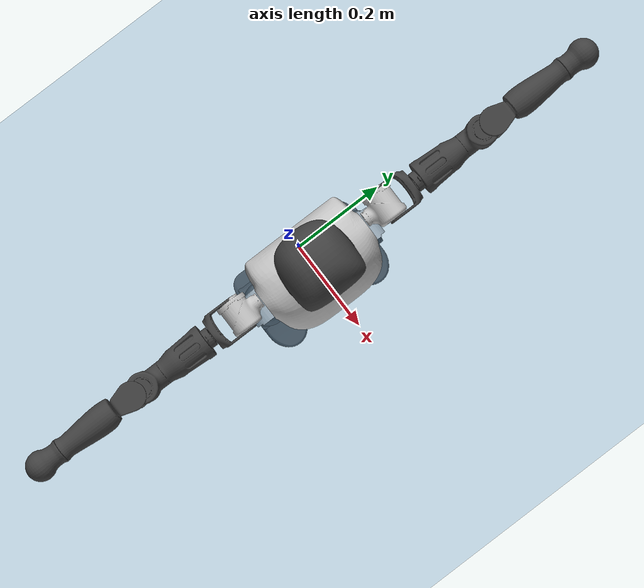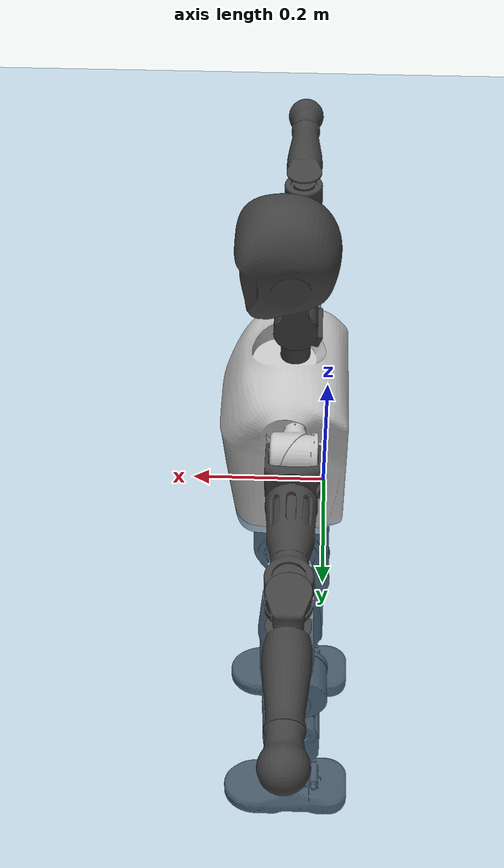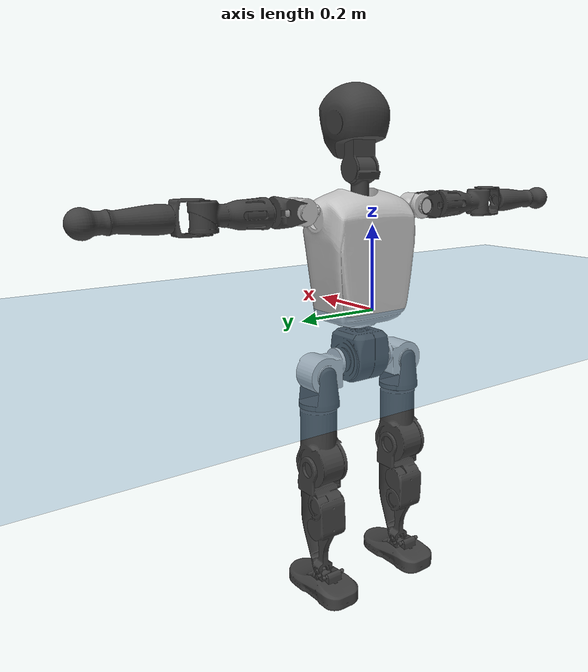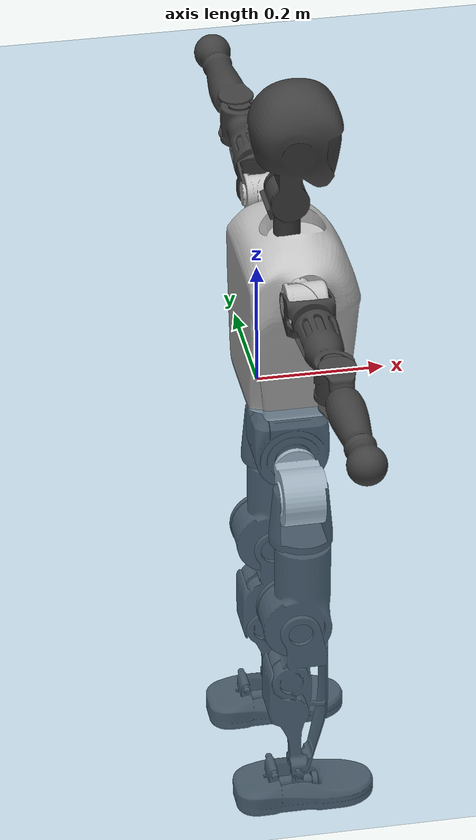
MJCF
<mujoco model="T1">
  <compiler angle="radian" assetdir="assets" balanceinertia="true" inertiafromgeom="false"/>

  <option timestep="0.005" density="1.2" viscosity="2e-05"/>

  <size nkey="1"/>

  <visual>
    <quality shadowsize="8192"/>
    <map shadowclip="0.5"/>
  </visual>

  <default>
    <default class="/">
      <joint armature="0.01" damping="0.01" frictionloss="0.1"/>
      <geom contype="0" conaffinity="0" group="1" solref="-1000 -80"/>
      <site size="0.01 0.005 0.005" group="5"/>
      <general forcelimited="true" biastype="affine" gainprm="25" biasprm="0 -25 -0.6"/>
      <default class="t1">
        <geom rgba="0.25 0.25 0.25 1"/>
        <default class="visual">
          <geom type="mesh" group="2"/>
        </default>
        <default class="collision">
          <geom group="3"/>
        </default>
        <default class="foot">
          <geom size="0.1115 0.05 0.015" type="box" condim="6" group="4" priority="1" solimp="0.015 1 0.015"/>
        </default>
        <default class="reward_collision_sphere">
          <geom group="5" rgba="1 0 0 1"/>
        </default>
      </default>
    </default>
  </default>

  <asset>
    <texture type="skybox" colorspace="auto" name="//unnamed_texture_0" builtin="gradient" rgb1="0.95 0.95 0.95" rgb2="0.95 0.95 0.95" width="100" height="600"/>
    <texture type="2d" colorspace="auto" name="texplane" builtin="checker" rgb1="0.345 0.575 0.748" rgb2="0.345 0.575 0.748" markrgb="1 1 1" width="512" height="512"/>
    <material name="MatPlane" class="/" texture="texplane" texuniform="true" texrepeat="2 2" specular="0.9"/>
    <mesh name="Trunk" class="/" file="Trunk.stl"/>
    <mesh name="H1" class="/" file="H1.stl"/>
    <mesh name="H2" class="/" file="H2.stl"/>
    <mesh name="AL1" class="/" file="AL1.stl"/>
    <mesh name="AL2" class="/" file="AL2.stl"/>
    <mesh name="AL3" class="/" file="AL3.stl"/>
    <mesh name="left_hand_link" class="/" file="left_hand_link.stl"/>
    <mesh name="AR1" class="/" file="AR1.stl"/>
    <mesh name="AR2" class="/" file="AR2.stl"/>
    <mesh name="AR3" class="/" file="AR3.stl"/>
    <mesh name="right_hand_link" class="/" file="right_hand_link.stl"/>
    <mesh name="Waist" class="/" file="Waist.stl"/>
    <mesh name="Hip_Pitch_Left" class="/" file="Hip_Pitch_Left.stl"/>
    <mesh name="Hip_Roll_Left" class="/" file="Hip_Roll_Left.stl"/>
    <mesh name="Hip_Yaw_Left" class="/" file="Hip_Yaw_Left.stl"/>
    <mesh name="Shank_Left" class="/" file="Shank_Left.stl"/>
    <mesh name="Ankle_Cross_Left" class="/" file="Ankle_Cross_Left.stl"/>
    <mesh name="left_foot_link" class="/" file="left_foot_link.stl"/>
    <mesh name="Hip_Pitch_Right" class="/" file="Hip_Pitch_Right.stl"/>
    <mesh name="Hip_Roll_Right" class="/" file="Hip_Roll_Right.stl"/>
    <mesh name="Hip_Yaw_Right" class="/" file="Hip_Yaw_Right.stl"/>
    <mesh name="Shank_Right" class="/" file="Shank_Right.stl"/>
    <mesh name="Ankle_Cross_Right" class="/" file="Ankle_Cross_Right.stl"/>
    <mesh name="right_foot_link" class="/" file="right_foot_link.stl"/>
  </asset>

  <worldbody>
    <geom name="floor" class="/" size="100 100 0.125" type="plane" group="0" material="MatPlane"/>
    <light name="toplight_shadow" class="/" pos="0 0 5" dir="0.0990148 0.0990148 -0.990148" type="directional" ambient="0.04 0.04 0.04" diffuse="0.55 0.55 0.55" specular="0.12 0.12 0.12"/>
    <light name="toplight_fill" class="/" pos="0 0 5" dir="0.0990148 0.0990148 -0.990148" type="directional" castshadow="false" ambient="0.04 0.04 0.04" diffuse="0.3 0.3 0.3" specular="0.08 0.08 0.08"/>
    <body name="trunk" childclass="t1" pos="-1.6628e-05 0.000539401 0.000340257" quat="1 3.16695e-05 -3.58993e-05 5.58691e-05">
      <inertial pos="0.0402267 0.000701744 0.112335" quat="0.999939 0.00239803 -0.0104618 -0.00254294" mass="11.6831" diaginertia="0.0224024 0.172475 0.0764269"/>
      <joint name="//unnamed_joint_0" type="free" armature="0" damping="0" frictionloss="0"/>
      <geom name="//unnamed_geom_1" class="visual" rgba="0.76 0.76 0.76 1" mesh="Trunk"/>
      <geom name="//unnamed_geom_2" class="collision" size="0.0747035 0.0996047 0.149407" pos="0.0451552 0 0.127597" type="box"/>
      <geom name="//unnamed_geom_3" class="reward_collision_sphere" size="0.114545" pos="0.0451552 0 0.106331"/>
      <geom name="//unnamed_geom_4" class="reward_collision_sphere" size="0.0149407" pos="0.0451552 0.0996407 0"/>
      <geom name="//unnamed_geom_5" class="reward_collision_sphere" size="0.0149407" pos="0.0451552 -0.0996407 0"/>
      <geom name="//unnamed_geom_6" class="reward_collision_sphere" size="0.0149407" pos="0.0451552 0.12543 0.191396"/>
      <geom name="//unnamed_geom_7" class="reward_collision_sphere" size="0.0149407" pos="0.0451552 -0.12543 0.191396"/>
      <site name="imu" pos="0.00464805 0.00452396 0.000712551" size="0.00996047"/>
      <camera name="track" pos="0 -2.34449 0" quat="0.707107 0.707107 0 0" mode="trackcom"/>
      <camera name="ego_camera" pos="0.0918155 0 0.446591" quat="-0.5 -0.5 0.5 0.5"/>
      <body name="H1" pos="0.047268 -0.000572421 0.258162" quat="1 1.91177e-05 -4.23572e-06 -2.42798e-07">
        <inertial pos="-0.00125298 -0.000504862 0.0605382" quat="0.764664 -0.0122579 0.000879516 0.644312" mass="0.442195" diaginertia="5.80719e-05 0.000497389 0.00020542"/>
        <joint name="AAHead_yaw" pos="0 0 0" axis="0.00210917 0.00301019 0.999993" stiffness="0.0022269" range="-1.57104 1.55792" armature="0.0100922" damping="0.00818784" frictionloss="0.0919897"/>
        <geom name="//unnamed_geom_8" class="visual" mesh="H1"/>
        <body name="H2" pos="-3.75079e-05 0.000402636 0.0654519" quat="1 1.79764e-05 0.000123631 3.23624e-05">
          <inertial pos="0.00585022 0.000359568 0.105143" quat="0.987918 0.107338 -0.0772275 -0.0808224" mass="0.620535" diaginertia="0.000491437 0.00424924 0.00232152"/>
          <joint name="Head_pitch" pos="0 0 0" axis="0.00164663 -0.999999 -0.000134904" range="-1.21518 0.351105" armature="0.00994056" damping="0.00700421" frictionloss="0.10346"/>
          <geom name="//unnamed_geom_9" class="visual" mesh="H2"/>
          <geom name="//unnamed_geom_10" class="collision" size="0.0796838" pos="0.00752586 0 0.116964"/>
          <geom name="//unnamed_geom_11" class="reward_collision_sphere" size="0.0896442" pos="0.0150517 0 0.106331"/>
        </body>
      </body>
      <body name="AL1" pos="0.0448707 0.1251 0.233834" quat="1 -0.000101539 0.000151355 0.000296278">
        <inertial pos="-0.000626031 0.0534615 0.000880588" quat="0.506737 0.493091 -0.505548 0.49447" mass="0.52573" diaginertia="0.000328038 0.00288709 0.000397168"/>
        <joint name="Left_Shoulder_Pitch" pos="0 0 0" axis="0.00195848 0.999998 7.06938e-05" range="-3.30166 1.22307" armature="0.00997397" damping="0.0135488" frictionloss="0.099275"/>
        <geom name="//unnamed_geom_12" class="visual" rgba="0.76 0.76 0.76 1" mesh="AL1"/>
        <body name="AL2" pos="0.000628361 0.0561997 0.000848193" quat="1 0.000373917 -0.000249193 0.000160143">
          <inertial pos="0.0035649 0.0455298 -0.00111122" quat="0.484859 0.515627 -0.483994 0.514577" mass="0.15613" diaginertia="9.64524e-05 0.000763559 0.000241508"/>
          <joint name="Left_Shoulder_Roll" pos="0 0 0" axis="-0.999999 -0.00131982 0.000652394" range="-1.57178 1.73852" armature="0.00996006" damping="0.00273449" frictionloss="0.0974323"/>
          <geom name="//unnamed_geom_13" class="visual" mesh="AL2"/>
          <body name="AL3" pos="0.000750039 0.0728983 -0.000414974" quat="1 2.00196e-05 -5.16474e-06 3.70103e-07">
            <inertial pos="-0.00111579 0.0997749 0.00073438" quat="0.70864 0.705567 -0.00160222 -0.00112338" mass="1.00271" diaginertia="0.0031057 0.0285023 0.000843768"/>
            <joint name="Left_Elbow_Pitch" pos="0 0 0" axis="0.00407829 -0.999991 0.000624907" range="-2.26375 2.28307" armature="0.00974368" damping="0.0082772" frictionloss="0.10007"/>
            <geom name="//unnamed_geom_14" class="visual" mesh="AL3"/>
            <geom name="//unnamed_geom_15" class="collision" size="0.0298814 0.0747035" pos="0 0.0586122 0" quat="0.707105 0.707108 0 0" type="cylinder"/>
            <geom name="//unnamed_geom_16" class="reward_collision_sphere" size="0.0358577"/>
            <body name="left_hand_link" pos="-0.000422688 0.173657 -6.98934e-05" quat="1 0.000143243 -0.000139411 -0.00020369">
              <inertial pos="-0.000286088 0.12812 0.000416828" quat="0.707896 0.706317 -5.68223e-05 -0.000452267" mass="0.325499" diaginertia="0.00197081 0.0180579 0.000290651"/>
              <joint name="Left_Elbow_Yaw" pos="0 0 0" axis="0.00147267 -0.00342095 0.999993" range="-2.45936 0.00809687" armature="0.0100561" damping="0.00340021" frictionloss="0.098602"/>
              <geom name="//unnamed_geom_17" class="visual" mesh="left_hand_link"/>
              <geom name="//unnamed_geom_18" class="collision" size="0.0298814 0.0871541" pos="0 0.152392 0" quat="0.707105 0.707108 0 0" type="cylinder"/>
              <geom name="//unnamed_geom_19" class="reward_collision_sphere" size="0.0498024"/>
              <geom name="//unnamed_geom_20" class="reward_collision_sphere" size="0.0348616" pos="0 0.128947 0"/>
              <geom name="//unnamed_geom_21" class="reward_collision_sphere" size="0.0348616" pos="0 0.252032 0"/>
            </body>
          </body>
        </body>
      </body>
      <body name="AR1" pos="0.0435585 -0.123871 0.233336" quat="1 0.000203711 0.000632112 -0.000167373">
        <inertial pos="-0.000152042 -0.0529838 -0.000877701" quat="0.50368 0.499075 -0.503104 0.494082" mass="0.520332" diaginertia="0.000327469 0.00280562 0.00039132"/>
        <joint name="Right_Shoulder_Pitch" pos="0 0 0" axis="0.00253591 -0.999991 0.00351058" range="-1.22418 3.3088" armature="0.0101551" damping="0.00377003" frictionloss="0.0943537"/>
        <geom name="//unnamed_geom_22" class="visual" rgba="0.76 0.76 0.76 1" mesh="AR1"/>
        <body name="AR2" pos="-0.00125237 -0.0547625 -0.000409818" quat="1 9.17581e-05 -2.52106e-05 -0.000110912">
          <inertial pos="0.0038094 -0.0458221 0.000757145" quat="0.513187 0.484732 -0.513523 0.48782" mass="0.157209" diaginertia="9.51578e-05 0.000764322 0.00023624"/>
          <joint name="Right_Shoulder_Roll" pos="0 0 0" axis="-0.999981 -0.000268818 0.00618316" range="-1.74343 1.56965" armature="0.0100129" damping="0.00128162" frictionloss="0.100257"/>
          <geom name="//unnamed_geom_23" class="visual" mesh="AR2"/>
          <body name="AR3" pos="0.000388054 -0.0716497 0.000485153" quat="1 0.000338393 -0.000347489 0.000228476">
            <inertial pos="-0.000494243 -0.100158 -0.000369093" quat="0.70992 0.704277 -0.00209032 -0.00143712" mass="0.997888" diaginertia="0.00307419 0.0275895 0.000838649"/>
            <joint name="Right_Elbow_Pitch" pos="0 0 0" axis="-0.00138936 0.999999 2.06512e-05" range="-2.28045 2.26478" armature="0.0099803" damping="0.00806789" frictionloss="0.101983"/>
            <geom name="//unnamed_geom_24" class="visual" mesh="AR3"/>
            <geom name="//unnamed_geom_25" class="collision" size="0.0298814 0.0747035" pos="0 -0.0586122 0" quat="0.707105 0.707108 0 0" type="cylinder"/>
            <geom name="//unnamed_geom_26" class="reward_collision_sphere" size="0.0358577"/>
            <body name="right_hand_link" pos="-0.000308387 -0.171806 0.000823103" quat="1 0.000183653 0.00019419 0.000150743">
              <inertial pos="5.45516e-05 -0.128904 0.000206729" quat="0.707729 0.706484 0.000271438 -0.000206997" mass="0.319681" diaginertia="0.00195706 0.0178713 0.000292005"/>
              <joint name="Right_Elbow_Yaw" pos="0 0 0" axis="2.24302e-05 0.00107243 0.999999" range="-0.0160872 2.43848" armature="0.00991921" damping="0.0064165" frictionloss="0.103982"/>
              <geom name="//unnamed_geom_27" class="visual" mesh="right_hand_link"/>
              <geom name="//unnamed_geom_28" class="collision" size="0.0298814 0.0871541" pos="0 -0.152392 0" quat="0.707105 0.707108 0 0" type="cylinder"/>
              <geom name="//unnamed_geom_29" class="reward_collision_sphere" size="0.0498024"/>
              <geom name="//unnamed_geom_30" class="reward_collision_sphere" size="0.0348616" pos="0 -0.128947 0"/>
              <geom name="//unnamed_geom_31" class="reward_collision_sphere" size="0.0348616" pos="0 -0.252032 0"/>
            </body>
          </body>
        </body>
      </body>
      <body name="Waist" pos="0.0479483 -0.000744515 -0.124131" quat="1 -0.000168646 2.79557e-05 -7.3415e-06">
        <inertial pos="-8.43194e-05 -0.000102854 0.00832938" quat="0.983755 0.00151288 -0.179487 0.00300203" mass="2.59294" diaginertia="0.00128959 0.0119103 0.00648226"/>
        <joint name="Waist" pos="0 0 0" axis="0.0042136 -0.000319881 0.999991" range="-1.55251 1.57504" armature="0.00966537" damping="0.0110653" frictionloss="0.100194"/>
        <geom name="//unnamed_geom_32" class="visual" mesh="Waist"/>
        <body name="Hip_Pitch_Left" pos="0.000449366 0.123383 -0.00141396" quat="1 -0.000113199 -8.81094e-05 -7.99398e-05">
          <inertial pos="0.000567803 -0.00894316 -0.0200776" quat="0.974264 0.225056 0.0123957 0.00239563" mass="1.02298" diaginertia="0.000436325 0.00321018 0.00170987"/>
          <joint name="Left_Hip_Pitch" pos="0 0 0" axis="0.000786615 0.999999 0.00151412" range="-1.80244 1.58671" armature="0.0104931" damping="0.00720727" frictionloss="0.0972287"/>
          <geom name="//unnamed_geom_33" class="visual" rgba="0.76 0.76 0.76 1" mesh="Hip_Pitch_Left"/>
          <body name="Hip_Roll_Left" pos="0.000714364 0.00082643 -0.0218949" quat="1 0.000145066 -3.95032e-05 7.82281e-05">
            <inertial pos="0.00213808 0.000112889 -0.0581163" quat="0.707974 -0.000682578 -0.00548402 0.706217" mass="0.373335" diaginertia="0.000418491 0.00329897 0.000694511"/>
            <joint name="Left_Hip_Roll" pos="0 0 0" axis="-1 0.000246801 0.000932071" range="-1.57021 0.210486" armature="0.0103358" damping="0.0136813" frictionloss="0.104262"/>
            <geom name="//unnamed_geom_34" class="visual" mesh="Hip_Roll_Left"/>
            <geom name="//unnamed_geom_35" class="reward_collision_sphere" size="0.0547826"/>
            <body name="Hip_Yaw_Left" pos="0.00104999 0.000262663 -0.0867389" quat="1 -0.000129941 0.000153899 -0.00014724">
              <inertial pos="-0.00528741 -0.00036993 -0.0954455" quat="0.696614 -0.0354715 -0.0324231 0.715835" mass="2.14692" diaginertia="0.00622901 0.0554823 0.00353522"/>
              <joint name="Left_Hip_Yaw" pos="0 0 0" axis="-0.000716783 0.000489071 -1" range="-0.986119 1.01765" armature="0.010033" damping="0.0131092" frictionloss="0.0990184"/>
              <geom name="//unnamed_geom_36" class="visual" mesh="Hip_Yaw_Left"/>
              <geom name="//unnamed_geom_37" class="collision" size="0.0498024 0.0796838" type="cylinder"/>
              <body name="Shank_Left" pos="-0.00889106 -4.96118e-05 -0.144526" quat="1 -1.15358e-07 -1.42932e-05 -3.17704e-05">
                <inertial pos="-0.00496747 0.000673365 -0.131917" quat="0.997587 0.00138994 -0.0238502 0.0651912" mass="1.68442" diaginertia="0.00839495 0.0763652 0.00254238"/>
                <joint name="Left_Knee_Pitch" pos="0 0 0" axis="-0.00203183 0.999994 0.00294658" range="-0.0203453 2.35862" armature="0.0100515" damping="0.00920911" frictionloss="0.0980559"/>
                <geom name="//unnamed_geom_38" class="visual" mesh="Shank_Left"/>
                <geom name="//unnamed_geom_39" class="collision" size="0.0498024 0.0747035" pos="0 0 -0.127597" type="cylinder"/>
                <geom name="//unnamed_geom_40" class="reward_collision_sphere" size="0.0647431"/>
                <body name="Ankle_Cross_Left" pos="-0.000938347 -0.00034877 -0.298614" quat="1 6.54711e-05 0.000131798 -0.000218256">
                  <inertial pos="-0.00185691 -0.000403865 -0.00945477" quat="0.443575 0.54961 0.551689 0.443631" mass="0.0717351" diaginertia="6.98975e-06 5.71765e-05 1.53609e-05"/>
                  <joint name="Left_Ankle_Pitch" pos="0 0 0" axis="-0.000381001 1 -0.000285031" range="-0.85562 0.358703" armature="0.0103902" damping="0.0126506" frictionloss="0.098897"/>
                  <geom name="//unnamed_geom_41" class="visual" mesh="Ankle_Cross_Left"/>
                  <body name="left_foot_link" pos="-0.000818245 0.000507147 -0.0131095" quat="1 0.000307302 0.000184698 0.000292419">
                    <inertial pos="0.000212415 0.000168345 -0.00965933" quat="-0.000257537 0.621041 0.000758062 0.783778" mass="0.672902" diaginertia="0.000644366 0.00519879 0.00301564"/>
                    <joint name="Left_Ankle_Roll" pos="0 0 0" axis="-0.999993 -0.000341432 -0.00372264" stiffness="0.000282855" range="-0.446375 0.439242" armature="0.00995779" damping="0.013202" frictionloss="0.0995584"/>
                    <geom name="//unnamed_geom_42" class="visual" mesh="left_foot_link"/>
                    <geom name="left_foot" class="foot" size="0.105501 0.0506367 0.0156182" pos="0.00752586 0 -0.0159497"/>
                    <geom name="//unnamed_geom_44" class="reward_collision_sphere" size="0.0517944" pos="0.00752586 0 -0.0159497"/>
                    <geom name="//unnamed_geom_45" class="reward_collision_sphere" size="0.0298814" pos="0.0714957 -0.0269616 -0.0159497"/>
                    <geom name="//unnamed_geom_46" class="reward_collision_sphere" size="0.0298814" pos="-0.052681 -0.0269616 -0.0159497"/>
                    <site name="left_foot" class="foot" pos="0.00752586 0 -0.0159497" size="0.00996047"/>
                  </body>
                </body>
              </body>
            </body>
          </body>
        </body>
        <body name="Hip_Pitch_Right" pos="-0.00135277 -0.124373 -0.000616654" quat="1 -6.61263e-06 -1.22354e-05 2.14568e-05">
          <inertial pos="0.000565978 0.00910748 -0.018677" quat="0.973423 -0.22849 0.0149402 -0.00404075" mass="1.0016" diaginertia="0.000432361 0.00321093 0.00165353"/>
          <joint name="Right_Hip_Pitch" pos="0 0 0" axis="0.000970889 -0.999997 0.00227874" stiffness="0.000279912" range="-1.5707 1.77316" armature="0.0103137" damping="0.00831299" frictionloss="0.099004"/>
          <geom name="//unnamed_geom_47" class="visual" rgba="0.76 0.76 0.76 1" mesh="Hip_Pitch_Right"/>
          <body name="Hip_Roll_Right" pos="0.000824748 -0.000382039 -0.0206689" quat="1 -0.000161669 -0.000372393 7.36001e-05">
            <inertial pos="0.000992825 -0.000583033 -0.0578401" quat="0.71023 -0.00291371 -0.00489928 0.703947" mass="0.382441" diaginertia="0.000419784 0.0033642 0.000699522"/>
            <joint name="Right_Hip_Roll" pos="0 0 0" axis="-0.999997 0.00150168 -0.00168265" range="-0.172501 1.56684" armature="0.00995026" damping="0.00672183" frictionloss="0.0948749"/>
            <geom name="//unnamed_geom_48" class="visual" mesh="Hip_Roll_Right"/>
            <geom name="//unnamed_geom_49" class="reward_collision_sphere" size="0.0547826"/>
            <body name="Hip_Yaw_Right" pos="0.000142426 -0.000163619 -0.087016" quat="1 -0.000156242 6.604e-05 4.88422e-05">
              <inertial pos="-0.00503617 0.000458821 -0.0958519" quat="0.715052 -0.0330903 -0.0333122 0.697492" mass="2.15795" diaginertia="0.00620051 0.0554716 0.00356801"/>
              <joint name="Right_Hip_Yaw" pos="0 0 0" axis="-0.00257111 -0.0114448 -0.999931" stiffness="0.000543483" range="-0.993825 1.00927" armature="0.0100865" damping="0.00172658" frictionloss="0.0998267"/>
              <geom name="//unnamed_geom_50" class="visual" mesh="Hip_Yaw_Right"/>
              <geom name="//unnamed_geom_51" class="collision" size="0.0498024 0.0796838" type="cylinder"/>
              <body name="Shank_Right" pos="-0.0103481 -0.000355145 -0.141972" quat="1 -0.000413621 -7.47258e-05 -0.000252466">
                <inertial pos="-0.00440916 -5.06106e-05 -0.130251" quat="0.999276 -0.000216688 -0.0225986 -0.0306141" mass="1.79721" diaginertia="0.00863352 0.0796387 0.0027295"/>
                <joint name="Right_Knee_Pitch" pos="0 0 0" axis="-0.00796804 -0.999968 0.000718939" range="-2.32688 -0.00942724" armature="0.0105686" damping="0.00729508" frictionloss="0.0990541"/>
                <geom name="//unnamed_geom_52" class="visual" mesh="Shank_Right"/>
                <geom name="//unnamed_geom_53" class="collision" size="0.0498024 0.0747035" pos="0 0 -0.127597" type="cylinder"/>
                <geom name="//unnamed_geom_54" class="reward_collision_sphere" size="0.0647431"/>
                <body name="Ankle_Cross_Right" pos="0.000651493 -0.000379889 -0.298224" quat="1 -4.00709e-05 4.62168e-05 -3.52137e-05">
                  <inertial pos="-0.00295558 0.000925388 -0.00850354" quat="0.444403 0.549836 0.552432 0.441594" mass="0.071219" diaginertia="6.89478e-06 5.58433e-05 1.51449e-05"/>
                  <joint name="Right_Ankle_Pitch" pos="0 0 0" axis="0.00367705 -0.999993 -0.00023182" range="-0.354523 0.861541" armature="0.00995494" damping="0.00971633" frictionloss="0.097748"/>
                  <geom name="//unnamed_geom_55" class="visual" mesh="Ankle_Cross_Right"/>
                  <body name="right_foot_link" pos="0.000916323 -0.000724612 -0.0118977" quat="1 -4.44135e-05 5.31153e-05 -1.41151e-05">
                    <inertial pos="-0.00123874 -0.000337064 -0.00983494" quat="1.31779e-06 0.620764 -1.1806e-05 0.783998" mass="0.673284" diaginertia="0.000649485 0.00528051 0.00295892"/>
                    <joint name="Right_Ankle_Roll" pos="0 0 0" axis="-0.999991 -0.00390293 0.00147439" stiffness="0.0007612" range="-0.458453 0.437947" armature="0.0101657" damping="0.00275701" frictionloss="0.101946"/>
                    <geom name="//unnamed_geom_56" class="visual" mesh="right_foot_link"/>
                    <geom name="right_foot" class="foot" size="0.10095 0.0490322 0.0155966" pos="0.00752586 0 -0.0159497"/>
                    <geom name="//unnamed_geom_58" class="reward_collision_sphere" size="0.0398419"/>
                    <geom name="//unnamed_geom_59" class="reward_collision_sphere" size="0.0298814" pos="0.00752586 0 -0.0159497"/>
                    <geom name="//unnamed_geom_60" class="reward_collision_sphere" size="0.0298814" pos="0.0714957 0.0269616 -0.0159497"/>
                    <geom name="//unnamed_geom_61" class="reward_collision_sphere" size="0.0298814" pos="-0.052681 0.0269616 -0.0159497"/>
                    <site name="right_foot" class="foot" pos="0.00752586 0 -0.0159497" size="0.00996047"/>
                  </body>
                </body>
              </body>
            </body>
          </body>
        </body>
      </body>
    </body>
  </worldbody>

  <contact>
    <pair class="/" geom1="floor" geom2="left_foot" name="//unnamed_contact_0"/>
    <pair class="/" geom1="floor" geom2="right_foot" name="//unnamed_contact_1"/>
  </contact>

  <actuator>
    <general name="AAHead_yaw" class="/" joint="AAHead_yaw" forcerange="-6.96728 6.96728" gainprm="25.2285" biasprm="0 -25.2285 -0.580877"/>
    <general name="Head_pitch" class="/" joint="Head_pitch" forcerange="-6.94881 6.94881" gainprm="25.2285" biasprm="0 -25.2285 -0.580877"/>
    <general name="Left_Shoulder_Pitch" class="/" joint="Left_Shoulder_Pitch" forcerange="-18.4602 18.4602" gainprm="25.2285" biasprm="0 -25.2285 -0.580877"/>
    <general name="Left_Shoulder_Roll" class="/" joint="Left_Shoulder_Roll" forcerange="-17.9987 17.9987" gainprm="25.2285" biasprm="0 -25.2285 -0.580877"/>
    <general name="Left_Elbow_Pitch" class="/" joint="Left_Elbow_Pitch" forcerange="-17.9394 17.9394" gainprm="25.2285" biasprm="0 -25.2285 -0.580877"/>
    <general name="Left_Elbow_Yaw" class="/" joint="Left_Elbow_Yaw" forcerange="-18.2619 18.2619" gainprm="25.2285" biasprm="0 -25.2285 -0.580877"/>
    <general name="Right_Shoulder_Pitch" class="/" joint="Right_Shoulder_Pitch" forcerange="-17.752 17.752" gainprm="25.2285" biasprm="0 -25.2285 -0.580877"/>
    <general name="Right_Shoulder_Roll" class="/" joint="Right_Shoulder_Roll" forcerange="-18.5845 18.5845" gainprm="25.2285" biasprm="0 -25.2285 -0.580877"/>
    <general name="Right_Elbow_Pitch" class="/" joint="Right_Elbow_Pitch" forcerange="-18.5036 18.5036" gainprm="25.2285" biasprm="0 -25.2285 -0.580877"/>
    <general name="Right_Elbow_Yaw" class="/" joint="Right_Elbow_Yaw" forcerange="-17.5577 17.5577" gainprm="25.2285" biasprm="0 -25.2285 -0.580877"/>
    <general name="Waist" class="/" joint="Waist" forcerange="-29.1797 29.1797" gainprm="25.2285" biasprm="0 -25.2285 -0.580877"/>
    <general name="Left_Hip_Pitch" class="/" joint="Left_Hip_Pitch" forcerange="-44.3419 44.3419" gainprm="25.2285" biasprm="0 -25.2285 -0.580877"/>
    <general name="Left_Hip_Roll" class="/" joint="Left_Hip_Roll" forcerange="-29.5276 29.5276" gainprm="25.2285" biasprm="0 -25.2285 -0.580877"/>
    <general name="Left_Hip_Yaw" class="/" joint="Left_Hip_Yaw" forcerange="-29.9714 29.9714" gainprm="25.2285" biasprm="0 -25.2285 -0.580877"/>
    <general name="Left_Knee_Pitch" class="/" joint="Left_Knee_Pitch" forcerange="-60.4045 60.4045" gainprm="25.2285" biasprm="0 -25.2285 -0.580877"/>
    <general name="Left_Ankle_Pitch" class="/" joint="Left_Ankle_Pitch" forcerange="-19.7598 19.7598" gainprm="25.2285" biasprm="0 -25.2285 -0.580877"/>
    <general name="Left_Ankle_Roll" class="/" joint="Left_Ankle_Roll" forcerange="-15.14 15.14" gainprm="25.2285" biasprm="0 -25.2285 -0.580877"/>
    <general name="Right_Hip_Pitch" class="/" joint="Right_Hip_Pitch" forcerange="-44.8014 44.8014" gainprm="25.2285" biasprm="0 -25.2285 -0.580877"/>
    <general name="Right_Hip_Roll" class="/" joint="Right_Hip_Roll" forcerange="-29.9797 29.9797" gainprm="25.2285" biasprm="0 -25.2285 -0.580877"/>
    <general name="Right_Hip_Yaw" class="/" joint="Right_Hip_Yaw" forcerange="-31.074 31.074" gainprm="25.2285" biasprm="0 -25.2285 -0.580877"/>
    <general name="Right_Knee_Pitch" class="/" joint="Right_Knee_Pitch" forcerange="-59.5703 59.5703" gainprm="25.2285" biasprm="0 -25.2285 -0.580877"/>
    <general name="Right_Ankle_Pitch" class="/" joint="Right_Ankle_Pitch" forcerange="-19.5906 19.5906" gainprm="25.2285" biasprm="0 -25.2285 -0.580877"/>
    <general name="Right_Ankle_Roll" class="/" joint="Right_Ankle_Roll" forcerange="-15.4503 15.4503" gainprm="25.2285" biasprm="0 -25.2285 -0.580877"/>
  </actuator>

  <sensor>
    <gyro site="imu" name="imu_angular_velocity"/>
    <velocimeter site="imu" name="imu_linear_velocity"/>
    <framelinvel objtype="site" objname="left_foot" name="left_foot_global_linear_velocity"/>
    <framelinvel objtype="site" objname="right_foot" name="right_foot_global_linear_velocity"/>
  </sensor>

  <keyframe>
    <key name="home" qpos="0 0 0.6385 1 0 0 0 0 0 0 1.4 0 -0.4 0 -1.4 0 0.4 0 -0.4 0 0 0.8 -0.4 0 0.4 0 0 -0.8 0.4 0"/>
  </keyframe>
</mujoco>
